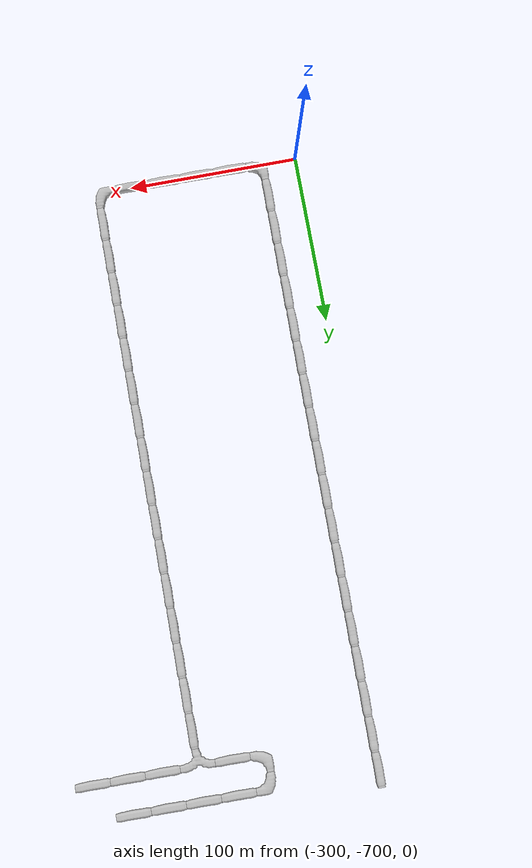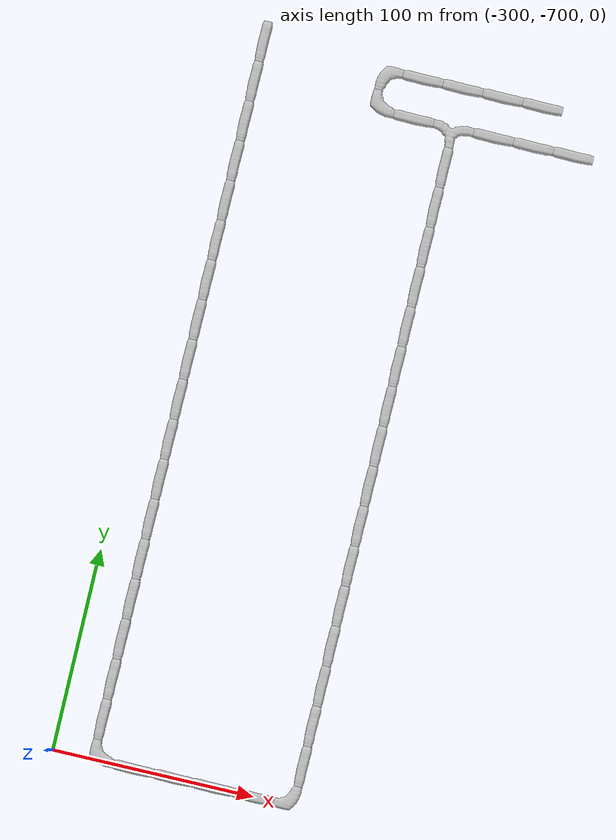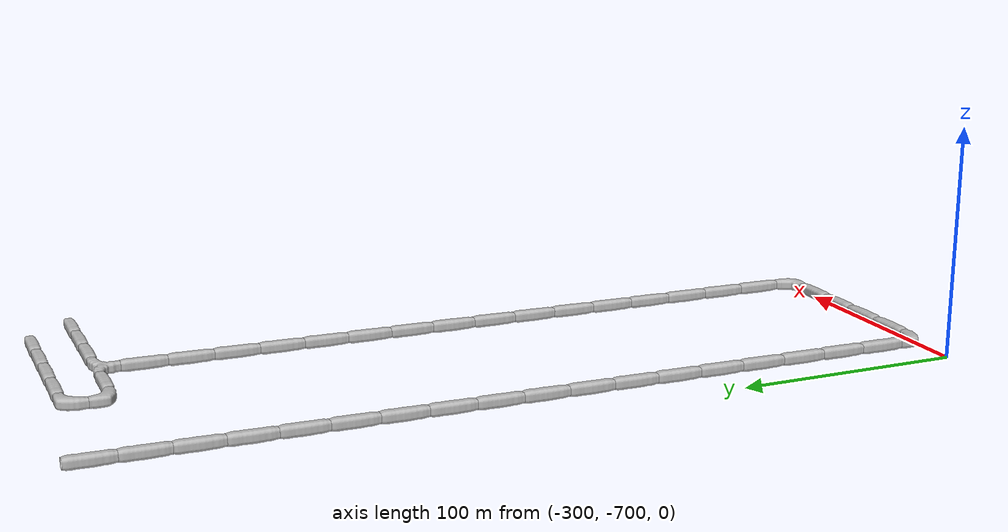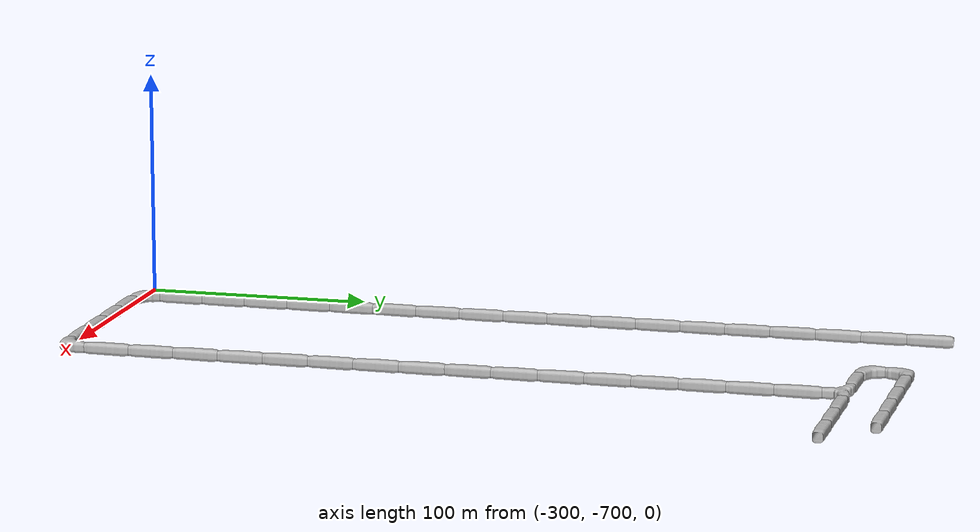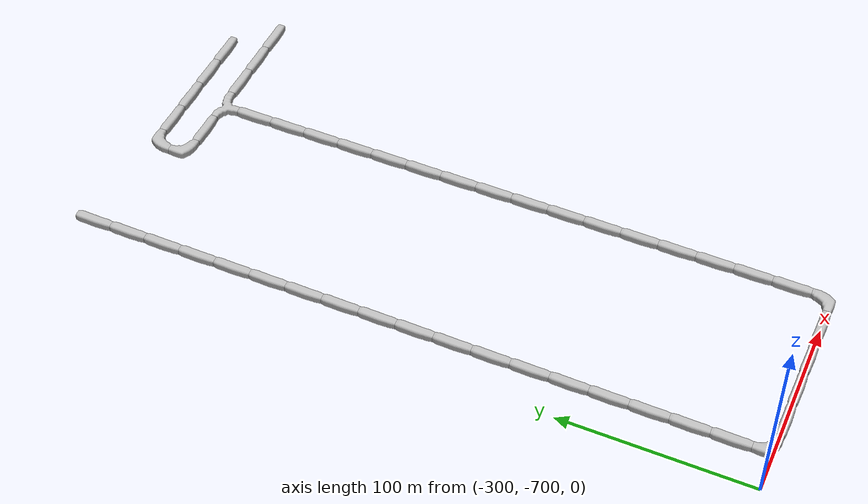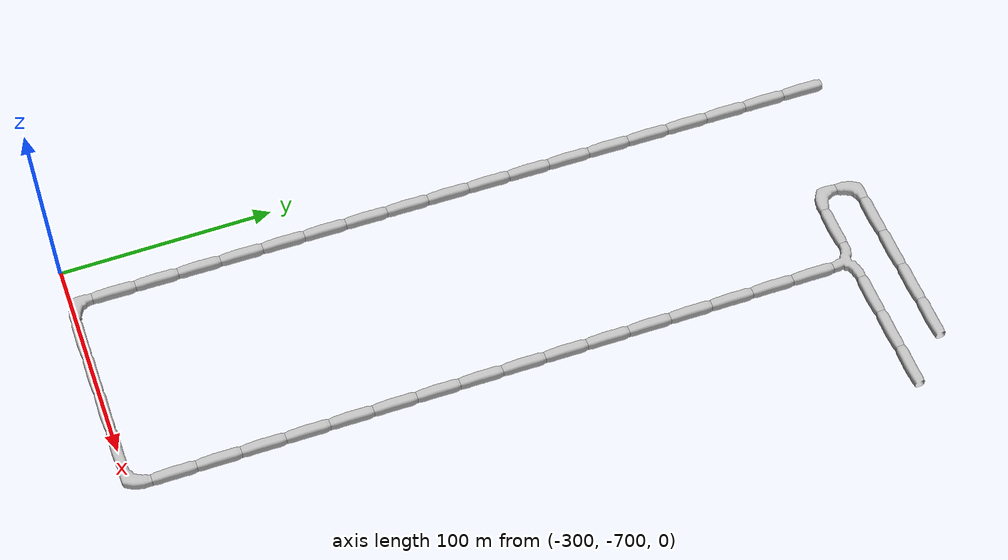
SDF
<sdf version="1.6">
 <world name="cave_8000_8">
  <include>
   <static>true</static>
   <name>cave_-14_-17</name>
   <pose>-280 -340 0 0 0 0.0</pose>
   <uri>model://cave_straight_20m</uri>
  </include>
  <include>
   <static>true</static>
   <name>cave_-14_-18</name>
   <pose>-280 -360 0 0 0 0.0</pose>
   <uri>model://cave_straight_20m</uri>
  </include>
  <include>
   <static>true</static>
   <name>cave_-14_-19</name>
   <pose>-280 -380 0 0 0 0.0</pose>
   <uri>model://cave_straight_20m</uri>
  </include>
  <include>
   <static>true</static>
   <name>cave_-14_-20</name>
   <pose>-280 -400 0 0 0 0.0</pose>
   <uri>model://cave_straight_20m</uri>
  </include>
  <include>
   <static>true</static>
   <name>cave_-14_-21</name>
   <pose>-280 -420 0 0 0 0.0</pose>
   <uri>model://cave_straight_20m</uri>
  </include>
  <include>
   <static>true</static>
   <name>cave_-14_-22</name>
   <pose>-280 -440 0 0 0 0.0</pose>
   <uri>model://cave_straight_20m</uri>
  </include>
  <include>
   <static>true</static>
   <name>cave_-14_-23</name>
   <pose>-280 -460 0 0 0 0.0</pose>
   <uri>model://cave_straight_20m</uri>
  </include>
  <include>
   <static>true</static>
   <name>cave_-14_-24</name>
   <pose>-280 -480 0 0 0 0.0</pose>
   <uri>model://cave_straight_20m</uri>
  </include>
  <include>
   <static>true</static>
   <name>cave_-14_-25</name>
   <pose>-280 -500 0 0 0 0.0</pose>
   <uri>model://cave_straight_20m</uri>
  </include>
  <include>
   <static>true</static>
   <name>cave_-14_-26</name>
   <pose>-280 -520 0 0 0 0.0</pose>
   <uri>model://cave_straight_20m</uri>
  </include>
  <include>
   <static>true</static>
   <name>cave_-14_-27</name>
   <pose>-280 -540 0 0 0 0.0</pose>
   <uri>model://cave_straight_20m</uri>
  </include>
  <include>
   <static>true</static>
   <name>cave_-14_-28</name>
   <pose>-280 -560 0 0 0 0.0</pose>
   <uri>model://cave_straight_20m</uri>
  </include>
  <include>
   <static>true</static>
   <name>cave_-14_-29</name>
   <pose>-280 -580 0 0 0 0.0</pose>
   <uri>model://cave_straight_20m</uri>
  </include>
  <include>
   <static>true</static>
   <name>cave_-14_-30</name>
   <pose>-280 -600 0 0 0 0.0</pose>
   <uri>model://cave_straight_20m</uri>
  </include>
  <include>
   <static>true</static>
   <name>cave_-14_-31</name>
   <pose>-280 -620 0 0 0 0.0</pose>
   <uri>model://cave_straight_20m</uri>
  </include>
  <include>
   <static>true</static>
   <name>cave_-14_-32</name>
   <pose>-280 -640 0 0 0 0.0</pose>
   <uri>model://cave_straight_20m</uri>
  </include>
  <include>
   <static>true</static>
   <name>cave_-14_-33</name>
   <pose>-280 -660 0 0 0 0.0</pose>
   <uri>model://cave_straight_20m</uri>
  </include>
  <include>
   <static>true</static>
   <name>cave_-14_-34</name>
   <pose>-280 -680 0 0 0 0.0</pose>
   <uri>model://cave_straight_20m</uri>
  </include>
  <include>
   <static>true</static>
   <name>cave_-14_-35</name>
   <pose>-280 -700 0 0 0 0.0</pose>
   <uri>model://cave_L_20m</uri>
  </include>
  <include>
   <static>true</static>
   <name>cave_-13_-35</name>
   <pose>-260 -700 0 0 0 1.5707963267948966</pose>
   <uri>model://cave_straight_20m</uri>
  </include>
  <include>
   <static>true</static>
   <name>cave_-12_-35</name>
   <pose>-240 -700 0 0 0 1.5707963267948966</pose>
   <uri>model://cave_straight_20m</uri>
  </include>
  <include>
   <static>true</static>
   <name>cave_-11_-35</name>
   <pose>-220 -700 0 0 0 1.5707963267948966</pose>
   <uri>model://cave_straight_20m</uri>
  </include>
  <include>
   <static>true</static>
   <name>cave_-10_-35</name>
   <pose>-200 -700 0 0 0 1.5707963267948966</pose>
   <uri>model://cave_straight_20m</uri>
  </include>
  <include>
   <static>true</static>
   <name>cave_-9_-35</name>
   <pose>-180 -700 0 0 0 1.5707963267948966</pose>
   <uri>model://cave_L_20m</uri>
  </include>
  <include>
   <static>true</static>
   <name>cave_-9_-34</name>
   <pose>-180 -680 0 0 0 0.0</pose>
   <uri>model://cave_straight_20m</uri>
  </include>
  <include>
   <static>true</static>
   <name>cave_-9_-33</name>
   <pose>-180 -660 0 0 0 0.0</pose>
   <uri>model://cave_straight_20m</uri>
  </include>
  <include>
   <static>true</static>
   <name>cave_-9_-32</name>
   <pose>-180 -640 0 0 0 0.0</pose>
   <uri>model://cave_straight_20m</uri>
  </include>
  <include>
   <static>true</static>
   <name>cave_-9_-31</name>
   <pose>-180 -620 0 0 0 0.0</pose>
   <uri>model://cave_straight_20m</uri>
  </include>
  <include>
   <static>true</static>
   <name>cave_-9_-30</name>
   <pose>-180 -600 0 0 0 0.0</pose>
   <uri>model://cave_straight_20m</uri>
  </include>
  <include>
   <static>true</static>
   <name>cave_-9_-29</name>
   <pose>-180 -580 0 0 0 0.0</pose>
   <uri>model://cave_straight_20m</uri>
  </include>
  <include>
   <static>true</static>
   <name>cave_-9_-28</name>
   <pose>-180 -560 0 0 0 0.0</pose>
   <uri>model://cave_straight_20m</uri>
  </include>
  <include>
   <static>true</static>
   <name>cave_-9_-27</name>
   <pose>-180 -540 0 0 0 0.0</pose>
   <uri>model://cave_straight_20m</uri>
  </include>
  <include>
   <static>true</static>
   <name>cave_-9_-26</name>
   <pose>-180 -520 0 0 0 0.0</pose>
   <uri>model://cave_straight_20m</uri>
  </include>
  <include>
   <static>true</static>
   <name>cave_-9_-25</name>
   <pose>-180 -500 0 0 0 0.0</pose>
   <uri>model://cave_straight_20m</uri>
  </include>
  <include>
   <static>true</static>
   <name>cave_-9_-24</name>
   <pose>-180 -480 0 0 0 0.0</pose>
   <uri>model://cave_straight_20m</uri>
  </include>
  <include>
   <static>true</static>
   <name>cave_-9_-23</name>
   <pose>-180 -460 0 0 0 0.0</pose>
   <uri>model://cave_straight_20m</uri>
  </include>
  <include>
   <static>true</static>
   <name>cave_-9_-22</name>
   <pose>-180 -440 0 0 0 0.0</pose>
   <uri>model://cave_straight_20m</uri>
  </include>
  <include>
   <static>true</static>
   <name>cave_-9_-21</name>
   <pose>-180 -420 0 0 0 0.0</pose>
   <uri>model://cave_straight_20m</uri>
  </include>
  <include>
   <static>true</static>
   <name>cave_-9_-20</name>
   <pose>-180 -400 0 0 0 0.0</pose>
   <uri>model://cave_straight_20m</uri>
  </include>
  <include>
   <static>true</static>
   <name>cave_-9_-19</name>
   <pose>-180 -380 0 0 0 0.0</pose>
   <uri>model://cave_straight_20m</uri>
  </include>
  <include>
   <static>true</static>
   <name>cave_-9_-18</name>
   <pose>-180 -360 0 0 0 3.141592653589793</pose>
   <uri>model://cave_3way_20m</uri>
  </include>
  <include>
   <static>true</static>
   <name>cave_-8_-18</name>
   <pose>-160 -360 0 0 0 1.5707963267948966</pose>
   <uri>model://cave_straight_20m</uri>
  </include>
  <include>
   <static>true</static>
   <name>cave_-7_-18</name>
   <pose>-140 -360 0 0 0 1.5707963267948966</pose>
   <uri>model://cave_straight_20m</uri>
  </include>
  <include>
   <static>true</static>
   <name>cave_-6_-18</name>
   <pose>-120 -360 0 0 0 1.5707963267948966</pose>
   <uri>model://cave_straight_20m</uri>
  </include>
  <include>
   <static>true</static>
   <name>cave_-10_-18</name>
   <pose>-200 -360 0 0 0 1.5707963267948966</pose>
   <uri>model://cave_straight_20m</uri>
  </include>
  <include>
   <static>true</static>
   <name>cave_-11_-18</name>
   <pose>-220 -360 0 0 0 0.0</pose>
   <uri>model://cave_L_20m</uri>
  </include>
  <include>
   <static>true</static>
   <name>cave_-11_-17</name>
   <pose>-220 -340 0 0 0 -1.5707963267948966</pose>
   <uri>model://cave_L_20m</uri>
  </include>
  <include>
   <static>true</static>
   <name>cave_-10_-17</name>
   <pose>-200 -340 0 0 0 1.5707963267948966</pose>
   <uri>model://cave_straight_20m</uri>
  </include>
  <include>
   <static>true</static>
   <name>cave_-9_-17</name>
   <pose>-180 -340 0 0 0 1.5707963267948966</pose>
   <uri>model://cave_straight_20m</uri>
  </include>
  <include>
   <static>true</static>
   <name>cave_-8_-17</name>
   <pose>-160 -340 0 0 0 1.5707963267948966</pose>
   <uri>model://cave_straight_20m</uri>
  </include>
  <include>
   <static>true</static>
   <name>cave_-7_-17</name>
   <pose>-140 -340 0 0 0 1.5707963267948966</pose>
   <uri>model://cave_straight_20m</uri>
  </include>
 </world>
</sdf>
